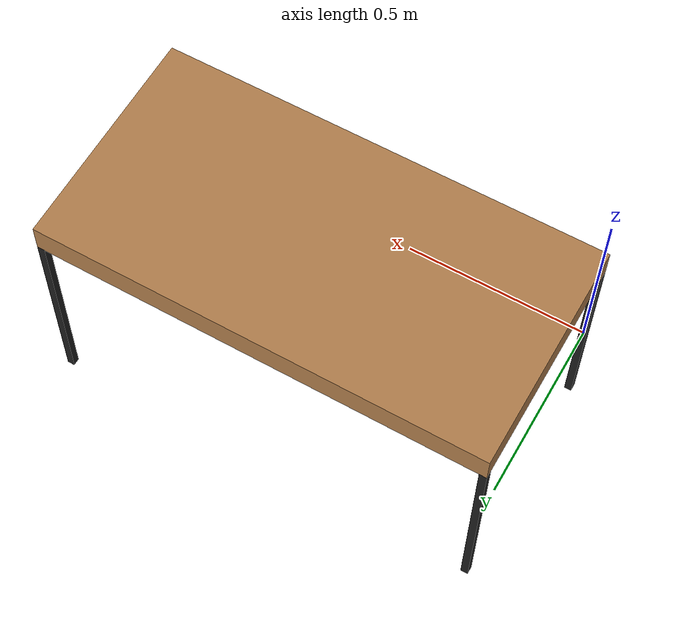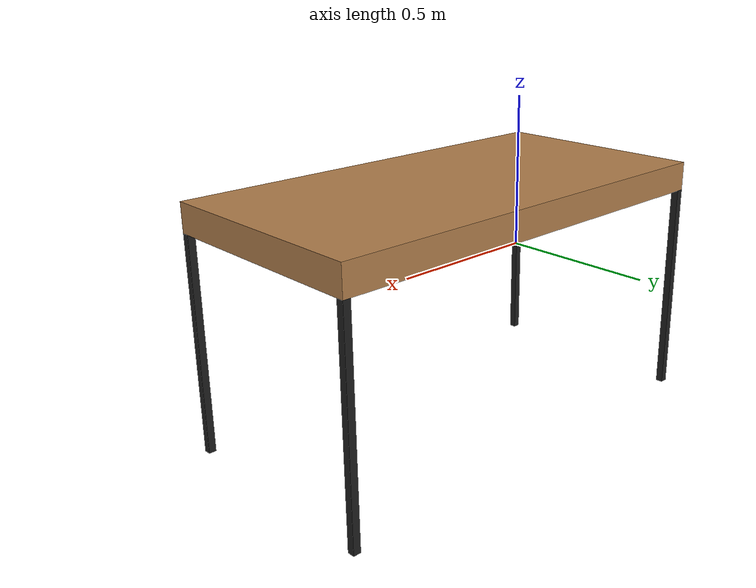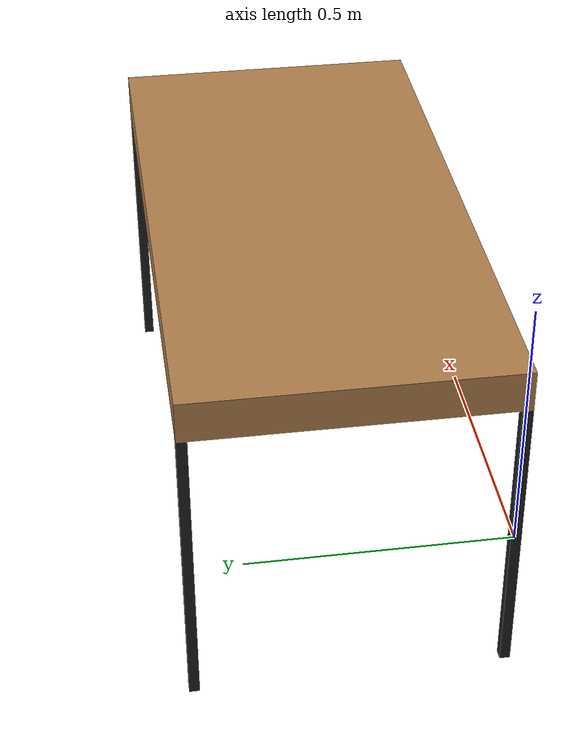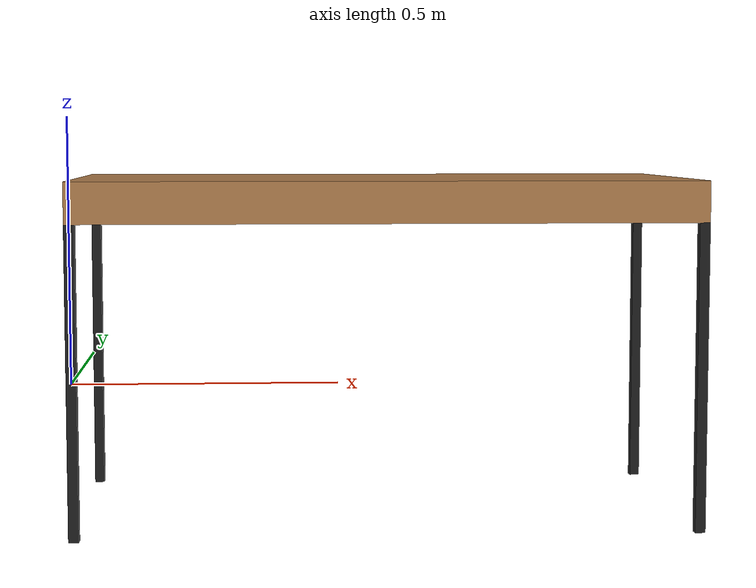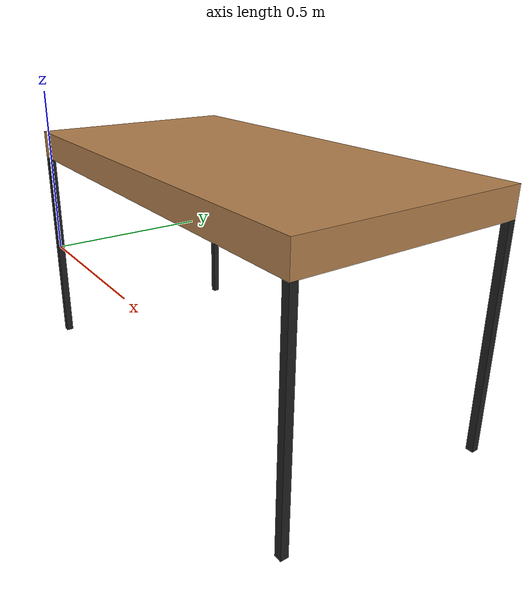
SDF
<?xml version='1.0'?>
<sdf version='1.7'>
  <model name='Table'>
    <link name='link'>
      <inertial>
        <mass>1</mass>
        <inertia>
          <ixx>0.166667</ixx>
          <ixy>0</ixy>
          <ixz>0</ixz>
          <iyy>0.166667</iyy>
          <iyz>0</iyz>
          <izz>0.166667</izz>
        </inertia>
        <pose>0 0 0 0 -0 0</pose>
      </inertial>
      <self_collide>0</self_collide>
      <enable_wind>0</enable_wind>
      <kinematic>0</kinematic>
      <pose>0 0 0 0 -0 0</pose>
      <gravity>1</gravity>
      <visual name='visual'>
        <geometry>
          <box>
            <size>0.02 0.02 0.6</size>
          </box>
        </geometry>
        <material>
          <script>
            <name>Gazebo/Black</name>
            <uri>file://media/materials/scripts/gazebo.material</uri>
          </script>
          <shader type='pixel'>
            <normal_map>__default__</normal_map>
          </shader>
          <ambient>0.3 0.3 0.3 1</ambient>
          <diffuse>0 0 0 1</diffuse>
          <specular>0.01 0.01 0.01 1</specular>
          <emissive>0 0 0 1</emissive>
        </material>
        <pose>0 0 0 0 -0 0</pose>
        <transparency>0</transparency>
        <cast_shadows>1</cast_shadows>
      </visual>
      <collision name='collision'>
        <laser_retro>0</laser_retro>
        <max_contacts>10</max_contacts>
        <pose>0 0 0 0 -0 0</pose>
        <geometry>
          <box>
            <size>0.02 0.02 0.6</size>
          </box>
        </geometry>
        <surface>
          <friction>
            <ode>
              <mu>1</mu>
              <mu2>1</mu2>
              <fdir1>0 0 0</fdir1>
              <slip1>0</slip1>
              <slip2>0</slip2>
            </ode>
            <torsional>
              <coefficient>1</coefficient>
              <patch_radius>0</patch_radius>
              <surface_radius>0</surface_radius>
              <use_patch_radius>1</use_patch_radius>
              <ode>
                <slip>0</slip>
              </ode>
            </torsional>
          </friction>
          <bounce>
            <restitution_coefficient>0</restitution_coefficient>
            <threshold>1e+06</threshold>
          </bounce>
          <contact>
            <collide_without_contact>0</collide_without_contact>
            <collide_without_contact_bitmask>1</collide_without_contact_bitmask>
            <collide_bitmask>1</collide_bitmask>
            <ode>
              <soft_cfm>0</soft_cfm>
              <soft_erp>0.2</soft_erp>
              <kp>1e+13</kp>
              <kd>1</kd>
              <max_vel>0.01</max_vel>
              <min_depth>0</min_depth>
            </ode>
            <bullet>
              <split_impulse>1</split_impulse>
              <split_impulse_penetration_threshold>-0.01</split_impulse_penetration_threshold>
              <soft_cfm>0</soft_cfm>
              <soft_erp>0.2</soft_erp>
              <kp>1e+13</kp>
              <kd>1</kd>
            </bullet>
          </contact>
        </surface>
      </collision>
    </link>
    <link name='link_8'>
      <inertial>
        <mass>1</mass>
        <inertia>
          <ixx>0.166667</ixx>
          <ixy>0</ixy>
          <ixz>0</ixz>
          <iyy>0.166667</iyy>
          <iyz>0</iyz>
          <izz>0.166667</izz>
        </inertia>
        <pose>0 0 0 0 -0 0</pose>
      </inertial>
      <pose>0.6 0.3 0.34 0 -0 0</pose>
      <gravity>1</gravity>
      <self_collide>0</self_collide>
      <kinematic>0</kinematic>
      <enable_wind>0</enable_wind>
      <visual name='visual'>
        <pose>0 0 0 0 -0 0</pose>
        <geometry>
          <box>
            <size>1.22 0.62 0.08</size>
          </box>
        </geometry>
        <material>
          <lighting>1</lighting>
          <script>
            <uri>file://media/materials/scripts/gazebo.material</uri>
            <name>Gazebo/Wood</name>
          </script>
          <shader type='pixel'>
            <normal_map>__default__</normal_map>
          </shader>
          <ambient>0.3 0.3 0.3 1</ambient>
          <diffuse>0.7 0.7 0.7 1</diffuse>
          <specular>0.01 0.01 0.01 1</specular>
          <emissive>0 0 0 1</emissive>
        </material>
        <transparency>0</transparency>
        <cast_shadows>1</cast_shadows>
      </visual>
      <collision name='collision'>
        <laser_retro>0</laser_retro>
        <max_contacts>10</max_contacts>
        <pose>0 0 0 0 -0 0</pose>
        <geometry>
          <box>
            <size>1.22 0.62 0.08</size>
          </box>
        </geometry>
        <surface>
          <friction>
            <ode>
              <mu>1</mu>
              <mu2>1</mu2>
              <fdir1>0 0 0</fdir1>
              <slip1>0</slip1>
              <slip2>0</slip2>
            </ode>
            <torsional>
              <coefficient>1</coefficient>
              <patch_radius>0</patch_radius>
              <surface_radius>0</surface_radius>
              <use_patch_radius>1</use_patch_radius>
              <ode>
                <slip>0</slip>
              </ode>
            </torsional>
          </friction>
          <bounce>
            <restitution_coefficient>0</restitution_coefficient>
            <threshold>1e+06</threshold>
          </bounce>
          <contact>
            <collide_without_contact>0</collide_without_contact>
            <collide_without_contact_bitmask>1</collide_without_contact_bitmask>
            <collide_bitmask>1</collide_bitmask>
            <ode>
              <soft_cfm>0</soft_cfm>
              <soft_erp>0.2</soft_erp>
              <kp>1e+13</kp>
              <kd>1</kd>
              <max_vel>0.01</max_vel>
              <min_depth>0</min_depth>
            </ode>
            <bullet>
              <split_impulse>1</split_impulse>
              <split_impulse_penetration_threshold>-0.01</split_impulse_penetration_threshold>
              <soft_cfm>0</soft_cfm>
              <soft_erp>0.2</soft_erp>
              <kp>1e+13</kp>
              <kd>1</kd>
            </bullet>
          </contact>
        </surface>
      </collision>
    </link>
    <link name='link_clone'>
      <inertial>
        <mass>1</mass>
        <inertia>
          <ixx>0.166667</ixx>
          <ixy>0</ixy>
          <ixz>0</ixz>
          <iyy>0.166667</iyy>
          <iyz>0</iyz>
          <izz>0.166667</izz>
        </inertia>
        <pose>0 0 0 0 -0 0</pose>
      </inertial>
      <self_collide>0</self_collide>
      <enable_wind>0</enable_wind>
      <kinematic>0</kinematic>
      <pose>1.2 0 0 0 -0 0</pose>
      <gravity>1</gravity>
      <visual name='visual'>
        <geometry>
          <box>
            <size>0.02 0.02 0.6</size>
          </box>
        </geometry>
        <material>
          <script>
            <name>Gazebo/Black</name>
            <uri>file://media/materials/scripts/gazebo.material</uri>
          </script>
          <shader type='pixel'>
            <normal_map>__default__</normal_map>
          </shader>
          <ambient>0.3 0.3 0.3 1</ambient>
          <diffuse>0 0 0 1</diffuse>
          <specular>0.01 0.01 0.01 1</specular>
          <emissive>0 0 0 1</emissive>
        </material>
        <pose>0 0 0 0 -0 0</pose>
        <transparency>0</transparency>
        <cast_shadows>1</cast_shadows>
      </visual>
      <collision name='collision'>
        <laser_retro>0</laser_retro>
        <max_contacts>10</max_contacts>
        <pose>0 0 0 0 -0 0</pose>
        <geometry>
          <box>
            <size>0.02 0.02 0.6</size>
          </box>
        </geometry>
        <surface>
          <friction>
            <ode>
              <mu>1</mu>
              <mu2>1</mu2>
              <fdir1>0 0 0</fdir1>
              <slip1>0</slip1>
              <slip2>0</slip2>
            </ode>
            <torsional>
              <coefficient>1</coefficient>
              <patch_radius>0</patch_radius>
              <surface_radius>0</surface_radius>
              <use_patch_radius>1</use_patch_radius>
              <ode>
                <slip>0</slip>
              </ode>
            </torsional>
          </friction>
          <bounce>
            <restitution_coefficient>0</restitution_coefficient>
            <threshold>1e+06</threshold>
          </bounce>
          <contact>
            <collide_without_contact>0</collide_without_contact>
            <collide_without_contact_bitmask>1</collide_without_contact_bitmask>
            <collide_bitmask>1</collide_bitmask>
            <ode>
              <soft_cfm>0</soft_cfm>
              <soft_erp>0.2</soft_erp>
              <kp>1e+13</kp>
              <kd>1</kd>
              <max_vel>0.01</max_vel>
              <min_depth>0</min_depth>
            </ode>
            <bullet>
              <split_impulse>1</split_impulse>
              <split_impulse_penetration_threshold>-0.01</split_impulse_penetration_threshold>
              <soft_cfm>0</soft_cfm>
              <soft_erp>0.2</soft_erp>
              <kp>1e+13</kp>
              <kd>1</kd>
            </bullet>
          </contact>
        </surface>
      </collision>
    </link>
    <link name='link_clone_0'>
      <inertial>
        <mass>1</mass>
        <inertia>
          <ixx>0.166667</ixx>
          <ixy>0</ixy>
          <ixz>0</ixz>
          <iyy>0.166667</iyy>
          <iyz>0</iyz>
          <izz>0.166667</izz>
        </inertia>
        <pose>0 0 0 0 -0 0</pose>
      </inertial>
      <self_collide>0</self_collide>
      <enable_wind>0</enable_wind>
      <kinematic>0</kinematic>
      <pose>1.2 0.6 0 0 -0 0</pose>
      <gravity>1</gravity>
      <visual name='visual'>
        <geometry>
          <box>
            <size>0.02 0.02 0.6</size>
          </box>
        </geometry>
        <material>
          <script>
            <name>Gazebo/Black</name>
            <uri>file://media/materials/scripts/gazebo.material</uri>
          </script>
          <shader type='pixel'>
            <normal_map>__default__</normal_map>
          </shader>
          <ambient>0.3 0.3 0.3 1</ambient>
          <diffuse>0 0 0 1</diffuse>
          <specular>0.01 0.01 0.01 1</specular>
          <emissive>0 0 0 1</emissive>
        </material>
        <pose>0 0 0 0 -0 0</pose>
        <transparency>0</transparency>
        <cast_shadows>1</cast_shadows>
      </visual>
      <collision name='collision'>
        <laser_retro>0</laser_retro>
        <max_contacts>10</max_contacts>
        <pose>0 0 0 0 -0 0</pose>
        <geometry>
          <box>
            <size>0.02 0.02 0.6</size>
          </box>
        </geometry>
        <surface>
          <friction>
            <ode>
              <mu>1</mu>
              <mu2>1</mu2>
              <fdir1>0 0 0</fdir1>
              <slip1>0</slip1>
              <slip2>0</slip2>
            </ode>
            <torsional>
              <coefficient>1</coefficient>
              <patch_radius>0</patch_radius>
              <surface_radius>0</surface_radius>
              <use_patch_radius>1</use_patch_radius>
              <ode>
                <slip>0</slip>
              </ode>
            </torsional>
          </friction>
          <bounce>
            <restitution_coefficient>0</restitution_coefficient>
            <threshold>1e+06</threshold>
          </bounce>
          <contact>
            <collide_without_contact>0</collide_without_contact>
            <collide_without_contact_bitmask>1</collide_without_contact_bitmask>
            <collide_bitmask>1</collide_bitmask>
            <ode>
              <soft_cfm>0</soft_cfm>
              <soft_erp>0.2</soft_erp>
              <kp>1e+13</kp>
              <kd>1</kd>
              <max_vel>0.01</max_vel>
              <min_depth>0</min_depth>
            </ode>
            <bullet>
              <split_impulse>1</split_impulse>
              <split_impulse_penetration_threshold>-0.01</split_impulse_penetration_threshold>
              <soft_cfm>0</soft_cfm>
              <soft_erp>0.2</soft_erp>
              <kp>1e+13</kp>
              <kd>1</kd>
            </bullet>
          </contact>
        </surface>
      </collision>
    </link>
    <link name='link_clone_1'>
      <inertial>
        <mass>1</mass>
        <inertia>
          <ixx>0.166667</ixx>
          <ixy>0</ixy>
          <ixz>0</ixz>
          <iyy>0.166667</iyy>
          <iyz>0</iyz>
          <izz>0.166667</izz>
        </inertia>
        <pose>0 0 0 0 -0 0</pose>
      </inertial>
      <self_collide>0</self_collide>
      <enable_wind>0</enable_wind>
      <kinematic>0</kinematic>
      <pose>0 0.6 0 0 -0 0</pose>
      <gravity>1</gravity>
      <visual name='visual'>
        <geometry>
          <box>
            <size>0.02 0.02 0.6</size>
          </box>
        </geometry>
        <material>
          <script>
            <name>Gazebo/Black</name>
            <uri>file://media/materials/scripts/gazebo.material</uri>
          </script>
          <shader type='pixel'>
            <normal_map>__default__</normal_map>
          </shader>
          <ambient>0.3 0.3 0.3 1</ambient>
          <diffuse>0 0 0 1</diffuse>
          <specular>0.01 0.01 0.01 1</specular>
          <emissive>0 0 0 1</emissive>
        </material>
        <pose>0 0 0 0 -0 0</pose>
        <transparency>0</transparency>
        <cast_shadows>1</cast_shadows>
      </visual>
      <collision name='collision'>
        <laser_retro>0</laser_retro>
        <max_contacts>10</max_contacts>
        <pose>0 0 0 0 -0 0</pose>
        <geometry>
          <box>
            <size>0.02 0.02 0.6</size>
          </box>
        </geometry>
        <surface>
          <friction>
            <ode>
              <mu>1</mu>
              <mu2>1</mu2>
              <fdir1>0 0 0</fdir1>
              <slip1>0</slip1>
              <slip2>0</slip2>
            </ode>
            <torsional>
              <coefficient>1</coefficient>
              <patch_radius>0</patch_radius>
              <surface_radius>0</surface_radius>
              <use_patch_radius>1</use_patch_radius>
              <ode>
                <slip>0</slip>
              </ode>
            </torsional>
          </friction>
          <bounce>
            <restitution_coefficient>0</restitution_coefficient>
            <threshold>1e+06</threshold>
          </bounce>
          <contact>
            <collide_without_contact>0</collide_without_contact>
            <collide_without_contact_bitmask>1</collide_without_contact_bitmask>
            <collide_bitmask>1</collide_bitmask>
            <ode>
              <soft_cfm>0</soft_cfm>
              <soft_erp>0.2</soft_erp>
              <kp>1e+13</kp>
              <kd>1</kd>
              <max_vel>0.01</max_vel>
              <min_depth>0</min_depth>
            </ode>
            <bullet>
              <split_impulse>1</split_impulse>
              <split_impulse_penetration_threshold>-0.01</split_impulse_penetration_threshold>
              <soft_cfm>0</soft_cfm>
              <soft_erp>0.2</soft_erp>
              <kp>1e+13</kp>
              <kd>1</kd>
            </bullet>
          </contact>
        </surface>
      </collision>
    </link>
    <static>1</static>
    <allow_auto_disable>1</allow_auto_disable>
  </model>
</sdf>
